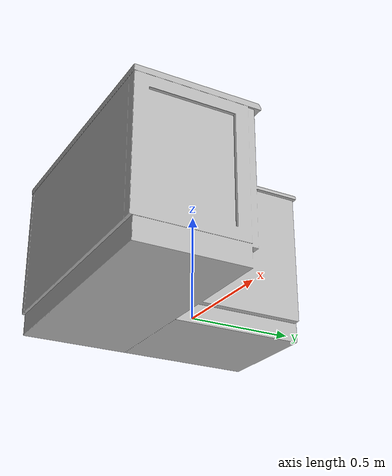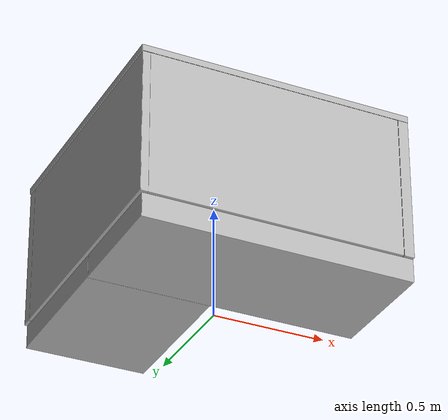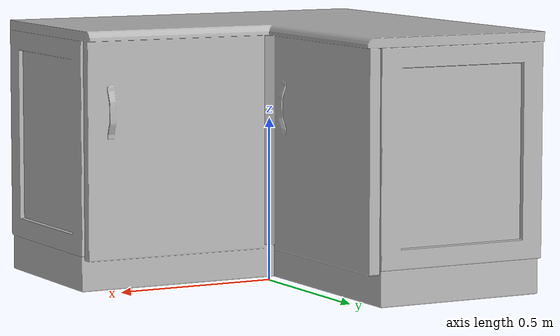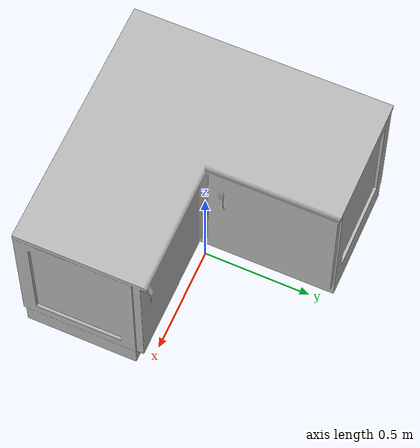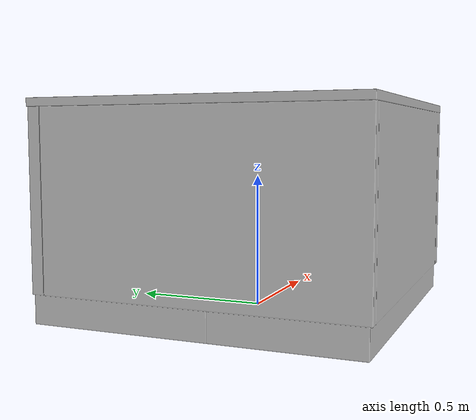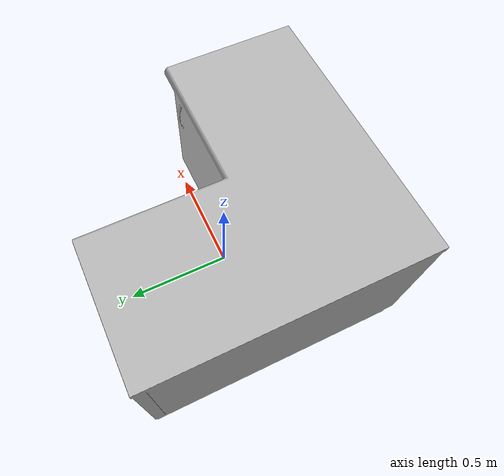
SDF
<?xml version='1.0'?>
<sdf version='1.4'>
  <model name='99'>
    <pose>0 0 0 0 0 0</pose>
    <static>true</static>
    <link name='link'>
      <collision name='collision'>
        <pose>0 0 0 0 0 0</pose>
        <geometry>
          <box>
            <size>1.2 1.2 2</size>
          </box>
        </geometry>
      </collision>
      <visual name='visual'>
        <pose>0 0 0 0 0 0</pose>
        <geometry>
          <mesh><uri>model://99/99.dae</uri></mesh>
        </geometry>
      </visual>
    </link>
  </model>
</sdf>
